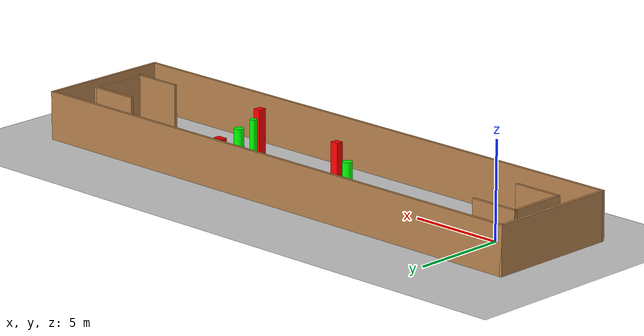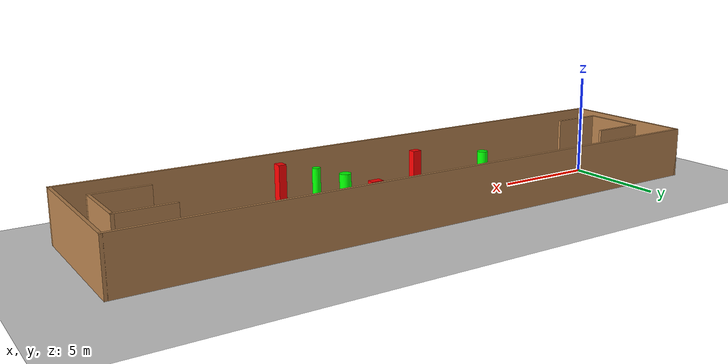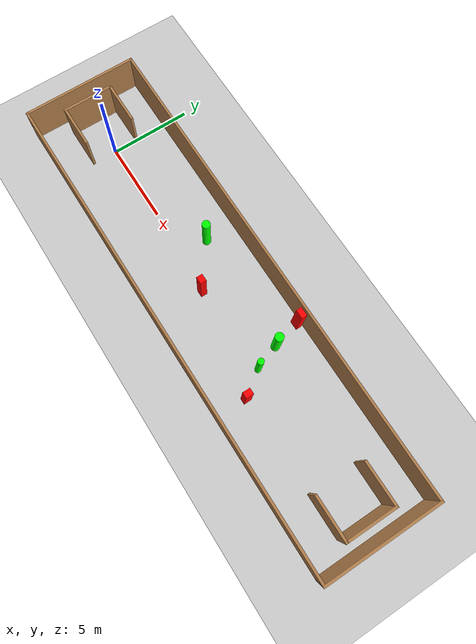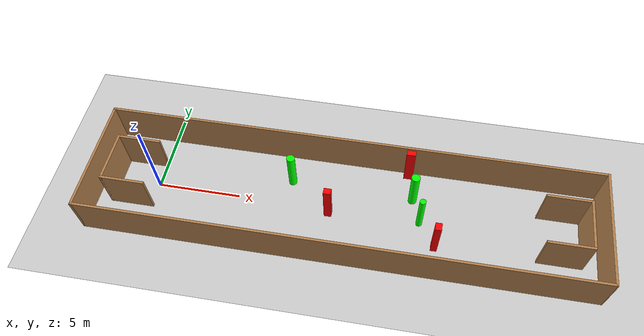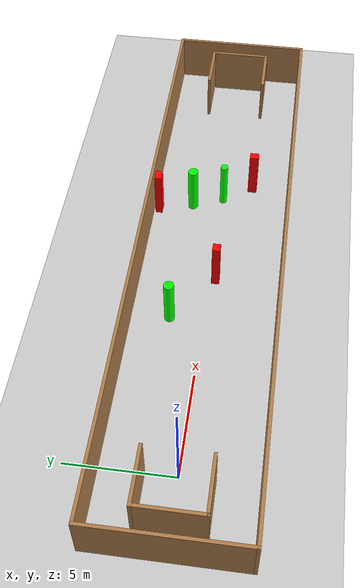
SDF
<sdf version="1.7">
 <world name="default">
  <light name="sun" type="directional">
   <pose>0 0 10 0 -0 0</pose>
   <diffuse>0.8 0.8 0.8 1</diffuse>
   <specular>0.2 0.2 0.2 1</specular>
   <attenuation>
    <range>1000</range>
    <constant>0.9</constant>
    <linear>0.01</linear>
    <quadratic>0.001</quadratic>
   </attenuation>
   <direction>-0.5 0.1 -0.9</direction>
   <spot><inner_angle>0</inner_angle><outer_angle>0</outer_angle><falloff>0</falloff></spot>
  </light>
  <model name="ground_plane">
   <static>1</static>
   <link name="link">
    <collision name="collision">
     <geometry><plane><normal>0 0 1</normal><size>100 100</size></plane></geometry>
     <surface>
      <contact><collide_bitmask>65535</collide_bitmask></contact>
      <friction><ode><mu>100</mu><mu2>50</mu2></ode></friction>
     </surface>
    </collision>
    <visual name="visual">
     <cast_shadows>0</cast_shadows>
     <geometry><plane><normal>0 0 1</normal><size>100 100</size></plane></geometry>
     <material>
      <script><uri>file://media/materials/scripts/gazebo.material</uri><name>Gazebo/Grey</name></script>
     </material>
    </visual>
   </link>
  </model>
  <gravity>0 0 -9.8</gravity>
  <magnetic_field>6e-06 2.3e-05 -4.2e-05</magnetic_field>
  <atmosphere type="adiabatic"/>
  <physics type="ode">
   <max_step_size>0.001</max_step_size>
   <real_time_factor>1</real_time_factor>
   <real_time_update_rate>1000</real_time_update_rate>
  </physics>
  <scene><ambient>0.4 0.4 0.4 1</ambient><background>0.7 0.7 0.7 1</background><shadows>1</shadows></scene>
  <spherical_coordinates>
   <surface_model>EARTH_WGS84</surface_model>
   <latitude_deg>0</latitude_deg>
   <longitude_deg>0</longitude_deg>
   <elevation>0</elevation>
   <heading_deg>0</heading_deg>
  </spherical_coordinates>
  <model name="my_base_walls">
   <link name="Wall_0">
    <collision name="Wall_0_Collision">
     <geometry><box><size>7.15 0.15 2.5</size></box></geometry>
     <pose>0 0 1.25 0 -0 0</pose>
    </collision>
    <visual name="Wall_0_Visual">
     <pose>0 0 1.25 0 -0 0</pose>
     <geometry><box><size>7.15 0.15 2.5</size></box></geometry>
     <material>
      <script><uri>file://media/materials/scripts/gazebo.material</uri><name>Gazebo/Wood</name></script>
      <ambient>1 1 1 1</ambient>
     </material>
     <meta><layer>0</layer></meta>
    </visual>
    <pose>-15 0 0 0 -0 1.5708</pose>
   </link>
   <link name="Wall_10">
    <collision name="Wall_10_Collision">
     <geometry><box><size>2.65 0.15 2.5</size></box></geometry>
     <pose>0 0 1.25 0 -0 0</pose>
    </collision>
    <visual name="Wall_10_Visual">
     <pose>0 0 1.25 0 -0 0</pose>
     <geometry><box><size>2.65 0.15 2.5</size></box></geometry>
     <material>
      <script><uri>file://media/materials/scripts/gazebo.material</uri><name>Gazebo/Wood</name></script>
      <ambient>1 1 1 1</ambient>
     </material>
     <meta><layer>0</layer></meta>
    </visual>
    <pose>-12.75 -1.5 0 0 -0 0</pose>
   </link>
   <link name="Wall_12">
    <collision name="Wall_12_Collision">
     <geometry><box><size>2.65 0.15 2.5</size></box></geometry>
     <pose>0 0 1.25 0 -0 0</pose>
    </collision>
    <visual name="Wall_12_Visual">
     <pose>0 0 1.25 0 -0 0</pose>
     <geometry><box><size>2.65 0.15 2.5</size></box></geometry>
     <material>
      <script><uri>file://media/materials/scripts/gazebo.material</uri><name>Gazebo/Wood</name></script>
      <ambient>1 1 1 1</ambient>
     </material>
     <meta><layer>0</layer></meta>
    </visual>
    <pose>-12.75 1.5 0 0 -0 0</pose>
   </link>
   <link name="Wall_14">
    <collision name="Wall_14_Collision">
     <geometry><box><size>3.15 0.15 2.5</size></box></geometry>
     <pose>0 0 1.25 0 -0 0</pose>
    </collision>
    <visual name="Wall_14_Visual">
     <pose>0 0 1.25 0 -0 0</pose>
     <geometry><box><size>3.15 0.15 2.5</size></box></geometry>
     <material>
      <script><uri>file://media/materials/scripts/gazebo.material</uri><name>Gazebo/Wood</name></script>
      <ambient>1 1 1 1</ambient>
     </material>
     <meta><layer>0</layer></meta>
    </visual>
    <pose>14 0 0 0 -0 -1.5708</pose>
   </link>
   <link name="Wall_15">
    <collision name="Wall_15_Collision">
     <geometry><box><size>2.65 0.15 2.5</size></box></geometry>
     <pose>0 0 1.25 0 -0 0</pose>
    </collision>
    <visual name="Wall_15_Visual">
     <pose>0 0 1.25 0 -0 0</pose>
     <geometry><box><size>2.65 0.15 2.5</size></box></geometry>
     <material>
      <script><uri>file://media/materials/scripts/gazebo.material</uri><name>Gazebo/Wood</name></script>
      <ambient>1 1 1 1</ambient>
     </material>
     <meta><layer>0</layer></meta>
    </visual>
    <pose>12.75 -1.5 0 0 -0 3.14159</pose>
   </link>
   <link name="Wall_17">
    <collision name="Wall_17_Collision">
     <geometry><box><size>2.65 0.15 2.5</size></box></geometry>
     <pose>0 0 1.25 0 -0 0</pose>
    </collision>
    <visual name="Wall_17_Visual">
     <pose>0 0 1.25 0 -0 0</pose>
     <geometry><box><size>2.65 0.15 2.5</size></box></geometry>
     <material>
      <script><uri>file://media/materials/scripts/gazebo.material</uri><name>Gazebo/Wood</name></script>
      <ambient>1 1 1 1</ambient>
     </material>
     <meta><layer>0</layer></meta>
    </visual>
    <pose>12.75 1.5 0 0 -0 3.14159</pose>
   </link>
   <link name="Wall_2">
    <collision name="Wall_2_Collision">
     <geometry><box><size>30.15 0.15 2.5</size></box></geometry>
     <pose>0 0 1.25 0 -0 0</pose>
    </collision>
    <visual name="Wall_2_Visual">
     <pose>0 0 1.25 0 -0 0</pose>
     <geometry><box><size>30.15 0.15 2.5</size></box></geometry>
     <material>
      <script><uri>file://media/materials/scripts/gazebo.material</uri><name>Gazebo/Wood</name></script>
      <ambient>1 1 1 1</ambient>
     </material>
     <meta><layer>0</layer></meta>
    </visual>
    <pose>-0 -3.5 0 0 -0 0</pose>
   </link>
   <link name="Wall_4">
    <collision name="Wall_4_Collision">
     <geometry><box><size>30.15 0.15 2.5</size></box></geometry>
     <pose>0 0 1.25 0 -0 0</pose>
    </collision>
    <visual name="Wall_4_Visual">
     <pose>0 0 1.25 0 -0 0</pose>
     <geometry><box><size>30.15 0.15 2.5</size></box></geometry>
     <material>
      <script><uri>file://media/materials/scripts/gazebo.material</uri><name>Gazebo/Wood</name></script>
      <ambient>1 1 1 1</ambient>
     </material>
     <meta><layer>0</layer></meta>
    </visual>
    <pose>-0 3.5 0 0 -0 0</pose>
   </link>
   <link name="Wall_6">
    <collision name="Wall_6_Collision">
     <geometry><box><size>7.15 0.15 2.5</size></box></geometry>
     <pose>0 0 1.25 0 -0 0</pose>
    </collision>
    <visual name="Wall_6_Visual">
     <pose>0 0 1.25 0 -0 0</pose>
     <geometry><box><size>7.15 0.15 2.5</size></box></geometry>
     <material>
      <script><uri>file://media/materials/scripts/gazebo.material</uri><name>Gazebo/Wood</name></script>
      <ambient>1 1 1 1</ambient>
     </material>
     <meta><layer>0</layer></meta>
    </visual>
    <pose>15 0 0 0 -0 -1.5708</pose>
   </link>
   <link name="Wall_9">
    <collision name="Wall_9_Collision">
     <geometry><box><size>3.15 0.15 2.5</size></box></geometry>
     <pose>0 0 1.25 0 -0 0</pose>
    </collision>
    <visual name="Wall_9_Visual">
     <pose>0 0 1.25 0 -0 0</pose>
     <geometry><box><size>3.15 0.15 2.5</size></box></geometry>
     <material>
      <script><uri>file://media/materials/scripts/gazebo.material</uri><name>Gazebo/Wood</name></script>
      <ambient>1 1 1 1</ambient>
     </material>
     <meta><layer>0</layer></meta>
    </visual>
    <pose>-14 0 0 0 -0 -1.5708</pose>
   </link>
   <static>1</static>
   <pose>11.5 0 0 0 -0 0</pose>
  </model>
  <model name="cylinder1">
   <static>1</static>
   <link name="link">
    <inertial>
     <mass>1</mass>
     <inertia><ixx>0.5</ixx><ixy>0</ixy><ixz>0</ixz><iyy>0.5</iyy><iyz>0</iyz><izz>1</izz></inertia>
    </inertial>
    <collision name="collision">
     <geometry><cylinder><radius>0.2571320021666402</radius><length>2.5</length></cylinder></geometry>
    </collision>
    <visual name="visual">
     <geometry><cylinder><radius>0.2571320021666402</radius><length>2.5</length></cylinder></geometry>
     <material>
      <ambient>0 1 0 1</ambient>
      <diffuse>0 1 0 1</diffuse>
      <specular>0.1 0.1 0.1 1</specular>
      <emissive>0 0 0 0</emissive>
     </material>
    </visual>
   </link>
   <pose>15.491736881168194 1.434491282361206 1.25 0 0 0</pose>
  </model>
  <model name="cylinder2">
   <static>1</static>
   <link name="link">
    <inertial>
     <mass>1</mass>
     <inertia><ixx>0.5</ixx><ixy>0</ixy><ixz>0</ixz><iyy>0.5</iyy><iyz>0</iyz><izz>1</izz></inertia>
    </inertial>
    <collision name="collision">
     <geometry><cylinder><radius>0.18656172835056045</radius><length>2.5</length></cylinder></geometry>
    </collision>
    <visual name="visual">
     <geometry><cylinder><radius>0.18656172835056045</radius><length>2.5</length></cylinder></geometry>
     <material>
      <ambient>0 1 0 1</ambient>
      <diffuse>0 1 0 1</diffuse>
      <specular>0.1 0.1 0.1 1</specular>
      <emissive>0 0 0 0</emissive>
     </material>
    </visual>
   </link>
   <pose>16.048905961623966 -0.10466164431746172 1.25 0 0 0</pose>
  </model>
  <model name="cylinder3">
   <static>1</static>
   <link name="link">
    <inertial>
     <mass>1</mass>
     <inertia><ixx>0.5</ixx><ixy>0</ixy><ixz>0</ixz><iyy>0.5</iyy><iyz>0</iyz><izz>1</izz></inertia>
    </inertial>
    <collision name="collision">
     <geometry><cylinder><radius>0.2465369896347185</radius><length>2.5</length></cylinder></geometry>
    </collision>
    <visual name="visual">
     <geometry><cylinder><radius>0.2465369896347185</radius><length>2.5</length></cylinder></geometry>
     <material>
      <ambient>0 1 0 1</ambient>
      <diffuse>0 1 0 1</diffuse>
      <specular>0.1 0.1 0.1 1</specular>
      <emissive>0 0 0 0</emissive>
     </material>
    </visual>
   </link>
   <pose>8.056073923700433 1.5893425084588344 1.25 0 0 0</pose>
  </model>
  <model name="box1">
   <static>1</static>
   <link name="link">
    <inertial>
     <mass>1</mass>
     <inertia><ixx>0.083</ixx><ixy>0</ixy><ixz>0</ixz><iyy>0.083</iyy><iyz>0</iyz><izz>0.083</izz></inertia>
    </inertial>
    <collision name="collision">
     <geometry><box><size>0.3705343238349285 0.45657467944555025 2.5</size></box></geometry>
    </collision>
    <visual name="visual">
     <geometry><box><size>0.3705343238349285 0.45657467944555025 2.5</size></box></geometry>
     <material>
      <ambient>1 0 0 1</ambient>
      <diffuse>1 0 0 1</diffuse>
      <specular>0.1 0.1 0.1 1</specular>
      <emissive>0 0 0 0</emissive>
     </material>
    </visual>
    <sensor name="my_contact" type="contact">
     <contact><collision>box_collision</collision><topic>__default_topic__</topic></contact>
    </sensor>
   </link>
   <pose>17.063296923174732 -1.5660566265680758 1.25 0 0 0</pose>
  </model>
  <model name="box2">
   <static>1</static>
   <link name="link">
    <inertial>
     <mass>1</mass>
     <inertia><ixx>0.083</ixx><ixy>0</ixy><ixz>0</ixz><iyy>0.083</iyy><iyz>0</iyz><izz>0.083</izz></inertia>
    </inertial>
    <collision name="collision">
     <geometry><box><size>0.43366161746104614 0.3736966004553107 2.5</size></box></geometry>
    </collision>
    <visual name="visual">
     <geometry><box><size>0.43366161746104614 0.3736966004553107 2.5</size></box></geometry>
     <material>
      <ambient>1 0 0 1</ambient>
      <diffuse>1 0 0 1</diffuse>
      <specular>0.1 0.1 0.1 1</specular>
      <emissive>0 0 0 0</emissive>
     </material>
    </visual>
    <sensor name="my_contact" type="contact">
     <contact><collision>box_collision</collision><topic>__default_topic__</topic></contact>
    </sensor>
   </link>
   <pose>10.596875265279767 -0.3198339720754335 1.25 0 0 0</pose>
  </model>
  <model name="box3">
   <static>1</static>
   <link name="link">
    <inertial>
     <mass>1</mass>
     <inertia><ixx>0.083</ixx><ixy>0</ixy><ixz>0</ixz><iyy>0.083</iyy><iyz>0</iyz><izz>0.083</izz></inertia>
    </inertial>
    <collision name="collision">
     <geometry><box><size>0.5466118554553563 0.34311623828779847 2.5</size></box></geometry>
    </collision>
    <visual name="visual">
     <geometry><box><size>0.5466118554553563 0.34311623828779847 2.5</size></box></geometry>
     <material>
      <ambient>1 0 0 1</ambient>
      <diffuse>1 0 0 1</diffuse>
      <specular>0.1 0.1 0.1 1</specular>
      <emissive>0 0 0 0</emissive>
     </material>
    </visual>
    <sensor name="my_contact" type="contact">
     <contact><collision>box_collision</collision><topic>__default_topic__</topic></contact>
    </sensor>
   </link>
   <pose>15.048898837965313 3.1516184992706178 1.25 0 0 0</pose>
  </model>
 </world>
</sdf>
